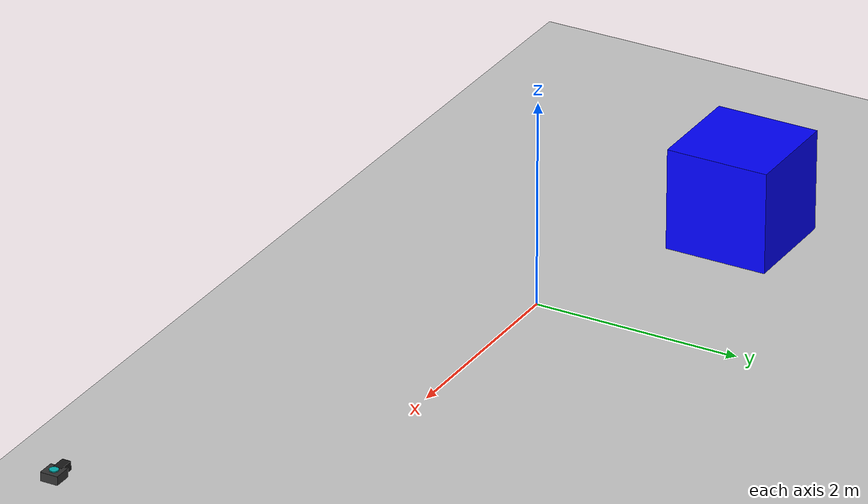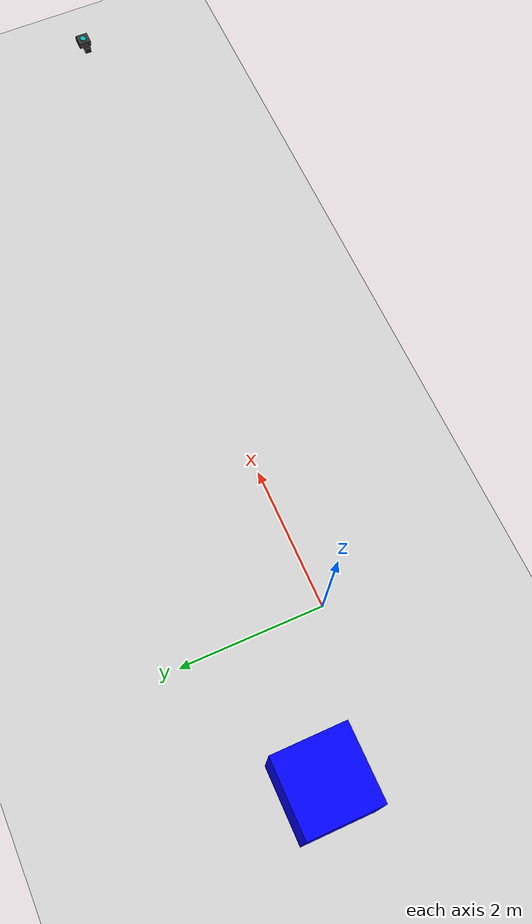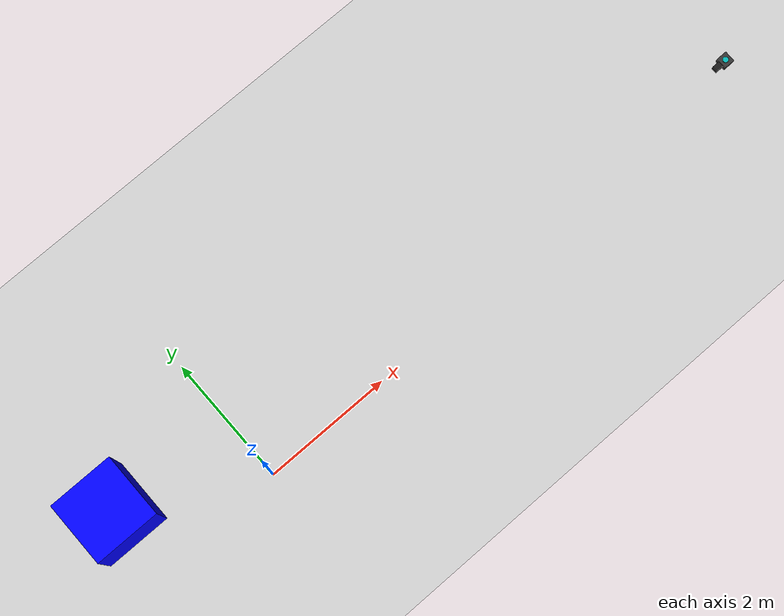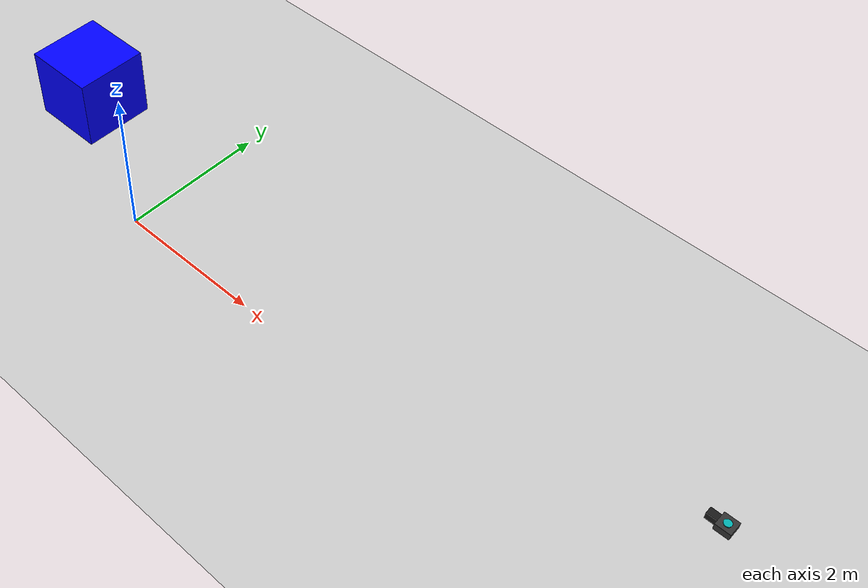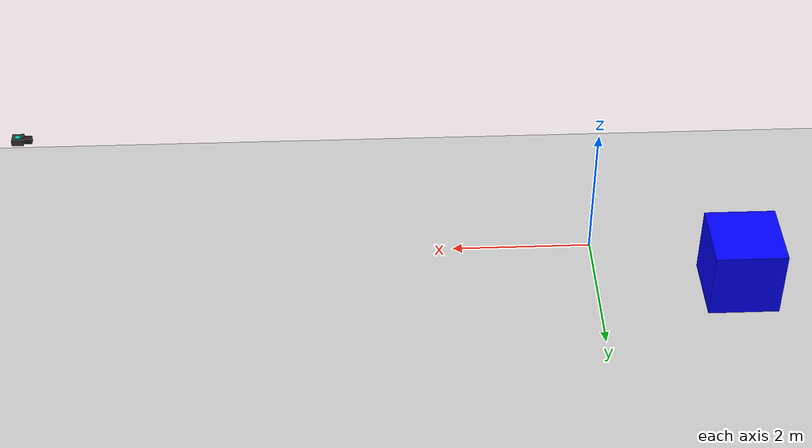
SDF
<sdf version="1.9">
 <world name="raptor_mvp_actor">
  <plugin filename="gz-sim-physics-system" name="gz::sim::systems::Physics"/>
  <plugin filename="gz-sim-user-commands-system" name="gz::sim::systems::UserCommands"/>
  <plugin filename="gz-sim-sensors-system" name="gz::sim::systems::Sensors">
   <render_engine>ogre2</render_engine>
  </plugin>
  <physics name="1ms" type="ignored">
   <max_step_size>0.001</max_step_size>
   <real_time_factor>1.0</real_time_factor>
  </physics>
  <scene><ambient>1.0 1.0 1.0</ambient><background>0.8 0.8 0.8</background><grid>false</grid></scene>
  <light type="directional" name="sun">
   <pose>0 0 10 0 0 0</pose>
   <diffuse>0.8 0.8 0.8 1</diffuse>
   <specular>0.8 0.8 0.8 1</specular>
   <attenuation>
    <range>1000</range>
    <constant>0.9</constant>
    <linear>0.01</linear>
    <quadratic>0.001</quadratic>
   </attenuation>
   <direction>-0.5 0.1 -0.9</direction>
  </light>
  <model name="ground_plane">
   <static>true</static>
   <link name="link">
    <collision name="collision">
     <geometry><plane><normal>0 0 1</normal><size>100 100</size></plane></geometry>
    </collision>
    <visual name="visual">
     <geometry><plane><normal>0 0 1</normal><size>100 100</size></plane></geometry>
     <material><ambient>0.8 0.8 0.8 1</ambient><diffuse>0.8 0.8 0.8 1</diffuse></material>
    </visual>
   </link>
  </model>
  <model name="distractor_box">
   <static>true</static>
   <pose>-2 1 0.5 0 0 0</pose>
   <link name="link">
    <collision name="collision"><geometry><box><size>1 1 1</size></box></geometry></collision>
    <visual name="visual">
     <geometry><box><size>1 1 1</size></box></geometry>
     <material><ambient>0 0 1 1</ambient><diffuse>0 0 1 1</diffuse></material>
    </visual>
   </link>
  </model>
  <model name="raptor_gimbal">
   <pose>8 0 2.2 0 0 3.14159</pose>
   <link name="base_link">
    <gravity>false</gravity>
    <inertial>
     <mass>0.3</mass>
     <inertia><ixx>0.001</ixx><iyy>0.001</iyy><izz>0.001</izz><ixy>0</ixy><ixz>0</ixz><iyz>0</iyz></inertia>
    </inertial>
    <visual name="base_visual">
     <geometry><box><size>0.16 0.16 0.08</size></box></geometry>
     <material><ambient>0.2 0.2 0.2 1</ambient><diffuse>0.2 0.2 0.2 1</diffuse></material>
    </visual>
   </link>
   <link name="yaw_link">
    <gravity>false</gravity>
    <inertial>
     <mass>0.2</mass>
     <inertia><ixx>0.0005</ixx><iyy>0.0005</iyy><izz>0.0005</izz><ixy>0</ixy><ixz>0</ixz><iyz>0</iyz></inertia>
    </inertial>
    <visual name="yaw_visual">
     <geometry><cylinder><radius>0.04</radius><length>0.10</length></cylinder></geometry>
     <material><ambient>0.0 0.7 0.7 1</ambient><diffuse>0.0 0.7 0.7 1</diffuse></material>
    </visual>
   </link>
   <link name="camera_link">
    <gravity>false</gravity>
    <inertial>
     <mass>0.2</mass>
     <inertia><ixx>0.0005</ixx><iyy>0.0005</iyy><izz>0.0005</izz><ixy>0</ixy><ixz>0</ixz><iyz>0</iyz></inertia>
    </inertial>
    <pose>0.12 0 0 0 0 0</pose>
    <visual name="camera_body_visual">
     <geometry><box><size>0.14 0.08 0.08</size></box></geometry>
     <material><ambient>0.1 0.1 0.1 1</ambient><diffuse>0.1 0.1 0.1 1</diffuse></material>
    </visual>
    <sensor name="camera" type="camera">
     <always_on>1</always_on>
     <update_rate>20</update_rate>
     <visualize>false</visualize>
     <topic>/raptor/camera</topic>
     <camera>
      <horizontal_fov>1.047</horizontal_fov>
      <image><width>640</width><height>480</height></image>
      <clip><near>0.1</near><far>100</far></clip>
     </camera>
    </sensor>
   </link>
   <joint name="yaw_joint" type="revolute">
    <parent>base_link</parent>
    <child>yaw_link</child>
    <axis>
     <xyz>0 0 1</xyz>
     <limit><lower>-1.4</lower><upper>1.4</upper><effort>10</effort><velocity>2.0</velocity></limit>
     <dynamics><damping>0.1</damping></dynamics>
    </axis>
   </joint>
   <joint name="pitch_joint" type="revolute">
    <parent>yaw_link</parent>
    <child>camera_link</child>
    <pose>0.06 0 0 0 0 0</pose>
    <axis>
     <xyz>0 1 0</xyz>
     <limit><lower>-0.7</lower><upper>0.7</upper><effort>10</effort><velocity>2.0</velocity></limit>
     <dynamics><damping>0.1</damping></dynamics>
    </axis>
   </joint>
   <plugin filename="gz-sim-joint-position-controller-system" name="gz::sim::systems::JointPositionController">
    <joint_name>yaw_joint</joint_name>
    <topic>/raptor/gimbal/yaw_cmd</topic>
    <use_velocity_commands>true</use_velocity_commands>
    <cmd_max>1.2</cmd_max>
   </plugin>
   <plugin filename="gz-sim-joint-position-controller-system" name="gz::sim::systems::JointPositionController">
    <joint_name>pitch_joint</joint_name>
    <topic>/raptor/gimbal/pitch_cmd</topic>
    <use_velocity_commands>true</use_velocity_commands>
    <cmd_max>1.0</cmd_max>
   </plugin>
   <plugin filename="gz-sim-joint-state-publisher-system" name="gz::sim::systems::JointStatePublisher">
    <topic>/raptor/gimbal/joint_state</topic>
    <joint_name>yaw_joint</joint_name>
    <joint_name>pitch_joint</joint_name>
   </plugin>
  </model>
 </world>
</sdf>
